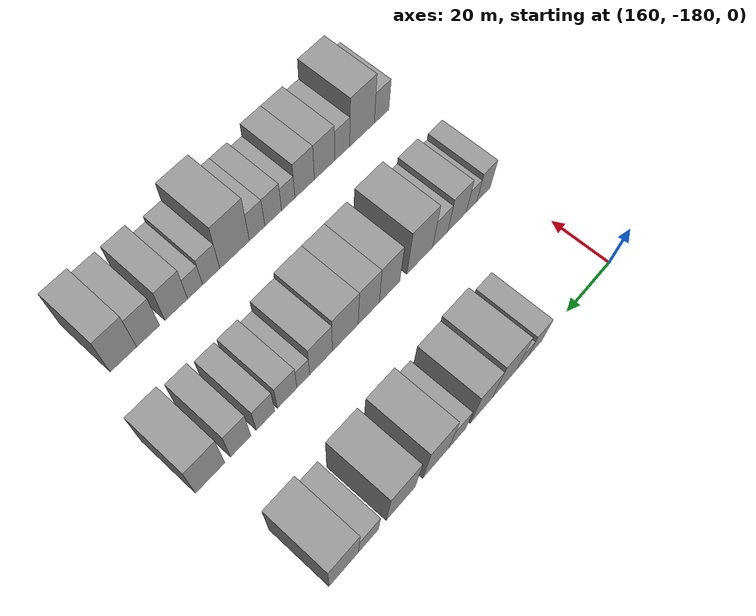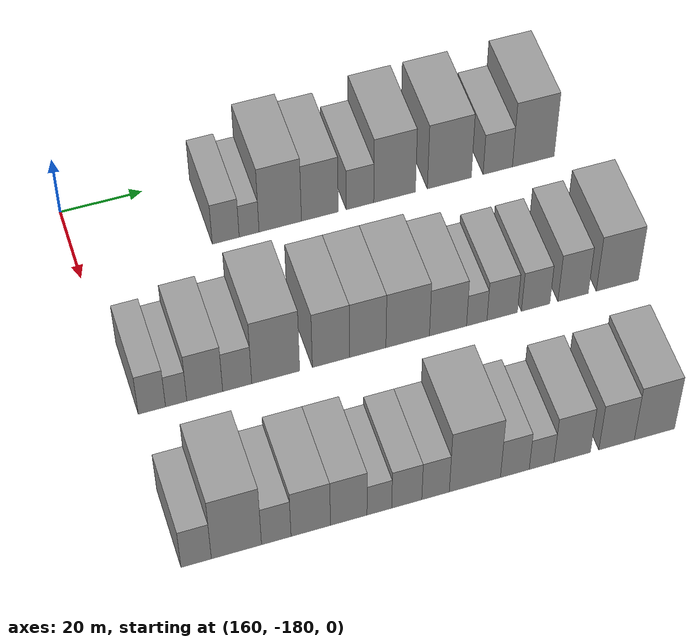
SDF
<sdf version="1.6">
 <world name="default">
  <model name="building_465">
   <static>1</static>
   <pose>170.0000 -145.0394 0 0.000000 0.000000 0.000000</pose>
   <link name="link">
    <pose>0 0 7.50 0 0 0</pose>
    <collision name="collision"><geometry><box><size>20.0000 6.5656 15.0000</size></box></geometry></collision>
    <visual name="visual">
     <cast_shadows>0</cast_shadows>
     <geometry><box><size>20.0000 6.5656 15.0000</size></box></geometry>
     <material>
      <script>
       <uri>model://grey_wall/materials/scripts</uri>
       <uri>model://grey_wall/materials/textures</uri>
       <name>vrc/grey_wall</name>
      </script>
     </material>
    </visual>
   </link>
  </model>
  <model name="building_466">
   <static>1</static>
   <pose>170.0000 -139.3261 0 0.000000 0.000000 0.000000</pose>
   <link name="link">
    <pose>0 0 6.00 0 0 0</pose>
    <collision name="collision"><geometry><box><size>20.0000 4.8610 12.0000</size></box></geometry></collision>
    <visual name="visual">
     <cast_shadows>0</cast_shadows>
     <geometry><box><size>20.0000 4.8610 12.0000</size></box></geometry>
     <material>
      <script>
       <uri>model://grey_wall/materials/scripts</uri>
       <uri>model://grey_wall/materials/textures</uri>
       <name>vrc/grey_wall</name>
      </script>
     </material>
    </visual>
   </link>
  </model>
  <model name="building_467">
   <static>1</static>
   <pose>170.0000 -131.6792 0 0.000000 0.000000 0.000000</pose>
   <link name="link">
    <pose>0 0 12.00 0 0 0</pose>
    <collision name="collision"><geometry><box><size>20.0000 10.4327 24.0000</size></box></geometry></collision>
    <visual name="visual">
     <cast_shadows>0</cast_shadows>
     <geometry><box><size>20.0000 10.4327 24.0000</size></box></geometry>
     <material>
      <script>
       <uri>model://grey_wall/materials/scripts</uri>
       <uri>model://grey_wall/materials/textures</uri>
       <name>vrc/grey_wall</name>
      </script>
     </material>
    </visual>
   </link>
  </model>
  <model name="building_468">
   <static>1</static>
   <pose>170.0000 -121.9236 0 0.000000 0.000000 0.000000</pose>
   <link name="link">
    <pose>0 0 10.50 0 0 0</pose>
    <collision name="collision"><geometry><box><size>20.0000 9.0785 21.0000</size></box></geometry></collision>
    <visual name="visual">
     <cast_shadows>0</cast_shadows>
     <geometry><box><size>20.0000 9.0785 21.0000</size></box></geometry>
     <material>
      <script>
       <uri>model://grey_wall/materials/scripts</uri>
       <uri>model://grey_wall/materials/textures</uri>
       <name>vrc/grey_wall</name>
      </script>
     </material>
    </visual>
   </link>
  </model>
  <model name="building_469">
   <static>1</static>
   <pose>170.0000 -111.9603 0 0.000000 0.000000 0.000000</pose>
   <link name="link">
    <pose>0 0 7.50 0 0 0</pose>
    <collision name="collision"><geometry><box><size>20.0000 6.8480 15.0000</size></box></geometry></collision>
    <visual name="visual">
     <cast_shadows>0</cast_shadows>
     <geometry><box><size>20.0000 6.8480 15.0000</size></box></geometry>
     <material>
      <script>
       <uri>model://grey_wall/materials/scripts</uri>
       <uri>model://grey_wall/materials/textures</uri>
       <name>vrc/grey_wall</name>
      </script>
     </material>
    </visual>
   </link>
  </model>
  <model name="building_470">
   <static>1</static>
   <pose>170.0000 -103.3231 0 0.000000 0.000000 0.000000</pose>
   <link name="link">
    <pose>0 0 12.00 0 0 0</pose>
    <collision name="collision"><geometry><box><size>20.0000 10.4263 24.0000</size></box></geometry></collision>
    <visual name="visual">
     <cast_shadows>0</cast_shadows>
     <geometry><box><size>20.0000 10.4263 24.0000</size></box></geometry>
     <material>
      <script>
       <uri>model://grey_wall/materials/scripts</uri>
       <uri>model://grey_wall/materials/textures</uri>
       <name>vrc/grey_wall</name>
      </script>
     </material>
    </visual>
   </link>
  </model>
  <model name="building_471">
   <static>1</static>
   <pose>170.0000 -89.5599 0 0.000000 0.000000 0.000000</pose>
   <link name="link">
    <pose>0 0 12.00 0 0 0</pose>
    <collision name="collision"><geometry><box><size>20.0000 11.1001 24.0000</size></box></geometry></collision>
    <visual name="visual">
     <cast_shadows>0</cast_shadows>
     <geometry><box><size>20.0000 11.1001 24.0000</size></box></geometry>
     <material>
      <script>
       <uri>model://grey_wall/materials/scripts</uri>
       <uri>model://grey_wall/materials/textures</uri>
       <name>vrc/grey_wall</name>
      </script>
     </material>
    </visual>
   </link>
  </model>
  <model name="building_472">
   <static>1</static>
   <pose>170.0000 -77.2872 0 0.000000 0.000000 0.000000</pose>
   <link name="link">
    <pose>0 0 7.50 0 0 0</pose>
    <collision name="collision"><geometry><box><size>20.0000 7.4454 15.0000</size></box></geometry></collision>
    <visual name="visual">
     <cast_shadows>0</cast_shadows>
     <geometry><box><size>20.0000 7.4454 15.0000</size></box></geometry>
     <material>
      <script>
       <uri>model://grey_wall/materials/scripts</uri>
       <uri>model://grey_wall/materials/textures</uri>
       <name>vrc/grey_wall</name>
      </script>
     </material>
    </visual>
   </link>
  </model>
  <model name="building_473">
   <static>1</static>
   <pose>170.0000 -68.2282 0 0.000000 0.000000 0.000000</pose>
   <link name="link">
    <pose>0 0 12.00 0 0 0</pose>
    <collision name="collision"><geometry><box><size>20.0000 10.6726 24.0000</size></box></geometry></collision>
    <visual name="visual">
     <cast_shadows>0</cast_shadows>
     <geometry><box><size>20.0000 10.6726 24.0000</size></box></geometry>
     <material>
      <script>
       <uri>model://grey_wall/materials/scripts</uri>
       <uri>model://grey_wall/materials/textures</uri>
       <name>vrc/grey_wall</name>
      </script>
     </material>
    </visual>
   </link>
  </model>
  <model name="building_593">
   <static>1</static>
   <pose>210.0000 -173.6153 0 0.000000 0.000000 0.000000</pose>
   <link name="link">
    <pose>0 0 7.50 0 0 0</pose>
    <collision name="collision"><geometry><box><size>20.0000 6.3141 15.0000</size></box></geometry></collision>
    <visual name="visual">
     <cast_shadows>0</cast_shadows>
     <geometry><box><size>20.0000 6.3141 15.0000</size></box></geometry>
     <material>
      <script>
       <uri>model://grey_wall/materials/scripts</uri>
       <uri>model://grey_wall/materials/textures</uri>
       <name>vrc/grey_wall</name>
      </script>
     </material>
    </visual>
   </link>
  </model>
  <model name="building_594">
   <static>1</static>
   <pose>210.0000 -167.9950 0 0.000000 0.000000 0.000000</pose>
   <link name="link">
    <pose>0 0 6.00 0 0 0</pose>
    <collision name="collision"><geometry><box><size>20.0000 4.9264 12.0000</size></box></geometry></collision>
    <visual name="visual">
     <cast_shadows>0</cast_shadows>
     <geometry><box><size>20.0000 4.9264 12.0000</size></box></geometry>
     <material>
      <script>
       <uri>model://grey_wall/materials/scripts</uri>
       <uri>model://grey_wall/materials/textures</uri>
       <name>vrc/grey_wall</name>
      </script>
     </material>
    </visual>
   </link>
  </model>
  <model name="building_595">
   <static>1</static>
   <pose>210.0000 -161.3542 0 0.000000 0.000000 0.000000</pose>
   <link name="link">
    <pose>0 0 9.00 0 0 0</pose>
    <collision name="collision"><geometry><box><size>20.0000 8.3553 18.0000</size></box></geometry></collision>
    <visual name="visual">
     <cast_shadows>0</cast_shadows>
     <geometry><box><size>20.0000 8.3553 18.0000</size></box></geometry>
     <material>
      <script>
       <uri>model://grey_wall/materials/scripts</uri>
       <uri>model://grey_wall/materials/textures</uri>
       <name>vrc/grey_wall</name>
      </script>
     </material>
    </visual>
   </link>
  </model>
  <model name="building_596">
   <static>1</static>
   <pose>210.0000 -153.7788 0 0.000000 0.000000 0.000000</pose>
   <link name="link">
    <pose>0 0 7.50 0 0 0</pose>
    <collision name="collision"><geometry><box><size>20.0000 6.7953 15.0000</size></box></geometry></collision>
    <visual name="visual">
     <cast_shadows>0</cast_shadows>
     <geometry><box><size>20.0000 6.7953 15.0000</size></box></geometry>
     <material>
      <script>
       <uri>model://grey_wall/materials/scripts</uri>
       <uri>model://grey_wall/materials/textures</uri>
       <name>vrc/grey_wall</name>
      </script>
     </material>
    </visual>
   </link>
  </model>
  <model name="building_597">
   <static>1</static>
   <pose>210.0000 -144.7455 0 0.000000 0.000000 0.000000</pose>
   <link name="link">
    <pose>0 0 12.00 0 0 0</pose>
    <collision name="collision"><geometry><box><size>20.0000 11.2714 24.0000</size></box></geometry></collision>
    <visual name="visual">
     <cast_shadows>0</cast_shadows>
     <geometry><box><size>20.0000 11.2714 24.0000</size></box></geometry>
     <material>
      <script>
       <uri>model://grey_wall/materials/scripts</uri>
       <uri>model://grey_wall/materials/textures</uri>
       <name>vrc/grey_wall</name>
      </script>
     </material>
    </visual>
   </link>
  </model>
  <model name="building_598">
   <static>1</static>
   <pose>210.0000 -131.6985 0 0.000000 0.000000 0.000000</pose>
   <link name="link">
    <pose>0 0 10.50 0 0 0</pose>
    <collision name="collision"><geometry><box><size>20.0000 8.8224 21.0000</size></box></geometry></collision>
    <visual name="visual">
     <cast_shadows>0</cast_shadows>
     <geometry><box><size>20.0000 8.8224 21.0000</size></box></geometry>
     <material>
      <script>
       <uri>model://grey_wall/materials/scripts</uri>
       <uri>model://grey_wall/materials/textures</uri>
       <name>vrc/grey_wall</name>
      </script>
     </material>
    </visual>
   </link>
  </model>
  <model name="building_599">
   <static>1</static>
   <pose>210.0000 -122.9503 0 0.000000 0.000000 0.000000</pose>
   <link name="link">
    <pose>0 0 10.50 0 0 0</pose>
    <collision name="collision"><geometry><box><size>20.0000 8.6740 21.0000</size></box></geometry></collision>
    <visual name="visual">
     <cast_shadows>0</cast_shadows>
     <geometry><box><size>20.0000 8.6740 21.0000</size></box></geometry>
     <material>
      <script>
       <uri>model://grey_wall/materials/scripts</uri>
       <uri>model://grey_wall/materials/textures</uri>
       <name>vrc/grey_wall</name>
      </script>
     </material>
    </visual>
   </link>
  </model>
  <model name="building_600">
   <static>1</static>
   <pose>210.0000 -113.3906 0 0.000000 0.000000 0.000000</pose>
   <link name="link">
    <pose>0 0 10.50 0 0 0</pose>
    <collision name="collision"><geometry><box><size>20.0000 10.4454 21.0000</size></box></geometry></collision>
    <visual name="visual">
     <cast_shadows>0</cast_shadows>
     <geometry><box><size>20.0000 10.4454 21.0000</size></box></geometry>
     <material>
      <script>
       <uri>model://grey_wall/materials/scripts</uri>
       <uri>model://grey_wall/materials/textures</uri>
       <name>vrc/grey_wall</name>
      </script>
     </material>
    </visual>
   </link>
  </model>
  <model name="building_601">
   <static>1</static>
   <pose>210.0000 -103.6855 0 0.000000 0.000000 0.000000</pose>
   <link name="link">
    <pose>0 0 9.00 0 0 0</pose>
    <collision name="collision"><geometry><box><size>20.0000 8.9649 18.0000</size></box></geometry></collision>
    <visual name="visual">
     <cast_shadows>0</cast_shadows>
     <geometry><box><size>20.0000 8.9649 18.0000</size></box></geometry>
     <material>
      <script>
       <uri>model://grey_wall/materials/scripts</uri>
       <uri>model://grey_wall/materials/textures</uri>
       <name>vrc/grey_wall</name>
      </script>
     </material>
    </visual>
   </link>
  </model>
  <model name="building_602">
   <static>1</static>
   <pose>210.0000 -96.7235 0 0.000000 0.000000 0.000000</pose>
   <link name="link">
    <pose>0 0 6.00 0 0 0</pose>
    <collision name="collision"><geometry><box><size>20.0000 4.9590 12.0000</size></box></geometry></collision>
    <visual name="visual">
     <cast_shadows>0</cast_shadows>
     <geometry><box><size>20.0000 4.9590 12.0000</size></box></geometry>
     <material>
      <script>
       <uri>model://grey_wall/materials/scripts</uri>
       <uri>model://grey_wall/materials/textures</uri>
       <name>vrc/grey_wall</name>
      </script>
     </material>
    </visual>
   </link>
  </model>
  <model name="building_603">
   <static>1</static>
   <pose>210.0000 -90.5403 0 0.000000 0.000000 0.000000</pose>
   <link name="link">
    <pose>0 0 7.50 0 0 0</pose>
    <collision name="collision"><geometry><box><size>20.0000 7.4075 15.0000</size></box></geometry></collision>
    <visual name="visual">
     <cast_shadows>0</cast_shadows>
     <geometry><box><size>20.0000 7.4075 15.0000</size></box></geometry>
     <material>
      <script>
       <uri>model://grey_wall/materials/scripts</uri>
       <uri>model://grey_wall/materials/textures</uri>
       <name>vrc/grey_wall</name>
      </script>
     </material>
    </visual>
   </link>
  </model>
  <model name="building_604">
   <static>1</static>
   <pose>210.0000 -82.3631 0 0.000000 0.000000 0.000000</pose>
   <link name="link">
    <pose>0 0 7.50 0 0 0</pose>
    <collision name="collision"><geometry><box><size>20.0000 6.9468 15.0000</size></box></geometry></collision>
    <visual name="visual">
     <cast_shadows>0</cast_shadows>
     <geometry><box><size>20.0000 6.9468 15.0000</size></box></geometry>
     <material>
      <script>
       <uri>model://grey_wall/materials/scripts</uri>
       <uri>model://grey_wall/materials/textures</uri>
       <name>vrc/grey_wall</name>
      </script>
     </material>
    </visual>
   </link>
  </model>
  <model name="building_605">
   <static>1</static>
   <pose>210.0000 -73.1635 0 0.000000 0.000000 0.000000</pose>
   <link name="link">
    <pose>0 0 9.00 0 0 0</pose>
    <collision name="collision"><geometry><box><size>20.0000 7.4525 18.0000</size></box></geometry></collision>
    <visual name="visual">
     <cast_shadows>0</cast_shadows>
     <geometry><box><size>20.0000 7.4525 18.0000</size></box></geometry>
     <material>
      <script>
       <uri>model://grey_wall/materials/scripts</uri>
       <uri>model://grey_wall/materials/textures</uri>
       <name>vrc/grey_wall</name>
      </script>
     </material>
    </visual>
   </link>
  </model>
  <model name="building_606">
   <static>1</static>
   <pose>210.0000 -62.2141 0 0.000000 0.000000 0.000000</pose>
   <link name="link">
    <pose>0 0 10.50 0 0 0</pose>
    <collision name="collision"><geometry><box><size>20.0000 10.4463 21.0000</size></box></geometry></collision>
    <visual name="visual">
     <cast_shadows>0</cast_shadows>
     <geometry><box><size>20.0000 10.4463 21.0000</size></box></geometry>
     <material>
      <script>
       <uri>model://grey_wall/materials/scripts</uri>
       <uri>model://grey_wall/materials/textures</uri>
       <name>vrc/grey_wall</name>
      </script>
     </material>
    </visual>
   </link>
  </model>
  <model name="building_732">
   <static>1</static>
   <pose>250.0000 -174.4849 0 0.000000 0.000000 0.000000</pose>
   <link name="link">
    <pose>0 0 7.50 0 0 0</pose>
    <collision name="collision"><geometry><box><size>20.0000 6.7580 15.0000</size></box></geometry></collision>
    <visual name="visual">
     <cast_shadows>0</cast_shadows>
     <geometry><box><size>20.0000 6.7580 15.0000</size></box></geometry>
     <material>
      <script>
       <uri>model://grey_wall/materials/scripts</uri>
       <uri>model://grey_wall/materials/textures</uri>
       <name>vrc/grey_wall</name>
      </script>
     </material>
    </visual>
   </link>
  </model>
  <model name="building_733">
   <static>1</static>
   <pose>250.0000 -165.5013 0 0.000000 0.000000 0.000000</pose>
   <link name="link">
    <pose>0 0 12.00 0 0 0</pose>
    <collision name="collision"><geometry><box><size>20.0000 11.2093 24.0000</size></box></geometry></collision>
    <visual name="visual">
     <cast_shadows>0</cast_shadows>
     <geometry><box><size>20.0000 11.2093 24.0000</size></box></geometry>
     <material>
      <script>
       <uri>model://grey_wall/materials/scripts</uri>
       <uri>model://grey_wall/materials/textures</uri>
       <name>vrc/grey_wall</name>
      </script>
     </material>
    </visual>
   </link>
  </model>
  <model name="building_734">
   <static>1</static>
   <pose>250.0000 -156.5807 0 0.000000 0.000000 0.000000</pose>
   <link name="link">
    <pose>0 0 7.50 0 0 0</pose>
    <collision name="collision"><geometry><box><size>20.0000 6.6319 15.0000</size></box></geometry></collision>
    <visual name="visual">
     <cast_shadows>0</cast_shadows>
     <geometry><box><size>20.0000 6.6319 15.0000</size></box></geometry>
     <material>
      <script>
       <uri>model://grey_wall/materials/scripts</uri>
       <uri>model://grey_wall/materials/textures</uri>
       <name>vrc/grey_wall</name>
      </script>
     </material>
    </visual>
   </link>
  </model>
  <model name="building_735">
   <static>1</static>
   <pose>250.0000 -148.8086 0 0.000000 0.000000 0.000000</pose>
   <link name="link">
    <pose>0 0 9.00 0 0 0</pose>
    <collision name="collision"><geometry><box><size>20.0000 8.9122 18.0000</size></box></geometry></collision>
    <visual name="visual">
     <cast_shadows>0</cast_shadows>
     <geometry><box><size>20.0000 8.9122 18.0000</size></box></geometry>
     <material>
      <script>
       <uri>model://grey_wall/materials/scripts</uri>
       <uri>model://grey_wall/materials/textures</uri>
       <name>vrc/grey_wall</name>
      </script>
     </material>
    </visual>
   </link>
  </model>
  <model name="building_736">
   <static>1</static>
   <pose>250.0000 -140.2031 0 0.000000 0.000000 0.000000</pose>
   <link name="link">
    <pose>0 0 9.00 0 0 0</pose>
    <collision name="collision"><geometry><box><size>20.0000 8.2988 18.0000</size></box></geometry></collision>
    <visual name="visual">
     <cast_shadows>0</cast_shadows>
     <geometry><box><size>20.0000 8.2988 18.0000</size></box></geometry>
     <material>
      <script>
       <uri>model://grey_wall/materials/scripts</uri>
       <uri>model://grey_wall/materials/textures</uri>
       <name>vrc/grey_wall</name>
      </script>
     </material>
    </visual>
   </link>
  </model>
  <model name="building_737">
   <static>1</static>
   <pose>250.0000 -133.2348 0 0.000000 0.000000 0.000000</pose>
   <link name="link">
    <pose>0 0 6.00 0 0 0</pose>
    <collision name="collision"><geometry><box><size>20.0000 5.6377 12.0000</size></box></geometry></collision>
    <visual name="visual">
     <cast_shadows>0</cast_shadows>
     <geometry><box><size>20.0000 5.6377 12.0000</size></box></geometry>
     <material>
      <script>
       <uri>model://grey_wall/materials/scripts</uri>
       <uri>model://grey_wall/materials/textures</uri>
       <name>vrc/grey_wall</name>
      </script>
     </material>
    </visual>
   </link>
  </model>
  <model name="building_738">
   <static>1</static>
   <pose>250.0000 -126.9623 0 0.000000 0.000000 0.000000</pose>
   <link name="link">
    <pose>0 0 7.50 0 0 0</pose>
    <collision name="collision"><geometry><box><size>20.0000 6.9073 15.0000</size></box></geometry></collision>
    <visual name="visual">
     <cast_shadows>0</cast_shadows>
     <geometry><box><size>20.0000 6.9073 15.0000</size></box></geometry>
     <material>
      <script>
       <uri>model://grey_wall/materials/scripts</uri>
       <uri>model://grey_wall/materials/textures</uri>
       <name>vrc/grey_wall</name>
      </script>
     </material>
    </visual>
   </link>
  </model>
  <model name="building_739">
   <static>1</static>
   <pose>250.0000 -120.3437 0 0.000000 0.000000 0.000000</pose>
   <link name="link">
    <pose>0 0 7.50 0 0 0</pose>
    <collision name="collision"><geometry><box><size>20.0000 6.3300 15.0000</size></box></geometry></collision>
    <visual name="visual">
     <cast_shadows>0</cast_shadows>
     <geometry><box><size>20.0000 6.3300 15.0000</size></box></geometry>
     <material>
      <script>
       <uri>model://grey_wall/materials/scripts</uri>
       <uri>model://grey_wall/materials/textures</uri>
       <name>vrc/grey_wall</name>
      </script>
     </material>
    </visual>
   </link>
  </model>
  <model name="building_740">
   <static>1</static>
   <pose>250.0000 -111.2496 0 0.000000 0.000000 0.000000</pose>
   <link name="link">
    <pose>0 0 12.00 0 0 0</pose>
    <collision name="collision"><geometry><box><size>20.0000 11.8581 24.0000</size></box></geometry></collision>
    <visual name="visual">
     <cast_shadows>0</cast_shadows>
     <geometry><box><size>20.0000 11.8581 24.0000</size></box></geometry>
     <material>
      <script>
       <uri>model://grey_wall/materials/scripts</uri>
       <uri>model://grey_wall/materials/textures</uri>
       <name>vrc/grey_wall</name>
      </script>
     </material>
    </visual>
   </link>
  </model>
  <model name="building_741">
   <static>1</static>
   <pose>250.0000 -101.9656 0 0.000000 0.000000 0.000000</pose>
   <link name="link">
    <pose>0 0 7.50 0 0 0</pose>
    <collision name="collision"><geometry><box><size>20.0000 6.7100 15.0000</size></box></geometry></collision>
    <visual name="visual">
     <cast_shadows>0</cast_shadows>
     <geometry><box><size>20.0000 6.7100 15.0000</size></box></geometry>
     <material>
      <script>
       <uri>model://grey_wall/materials/scripts</uri>
       <uri>model://grey_wall/materials/textures</uri>
       <name>vrc/grey_wall</name>
      </script>
     </material>
    </visual>
   </link>
  </model>
  <model name="building_742">
   <static>1</static>
   <pose>250.0000 -95.7255 0 0.000000 0.000000 0.000000</pose>
   <link name="link">
    <pose>0 0 6.00 0 0 0</pose>
    <collision name="collision"><geometry><box><size>20.0000 5.7701 12.0000</size></box></geometry></collision>
    <visual name="visual">
     <cast_shadows>0</cast_shadows>
     <geometry><box><size>20.0000 5.7701 12.0000</size></box></geometry>
     <material>
      <script>
       <uri>model://grey_wall/materials/scripts</uri>
       <uri>model://grey_wall/materials/textures</uri>
       <name>vrc/grey_wall</name>
      </script>
     </material>
    </visual>
   </link>
  </model>
  <model name="building_743">
   <static>1</static>
   <pose>250.0000 -88.5403 0 0.000000 0.000000 0.000000</pose>
   <link name="link">
    <pose>0 0 9.00 0 0 0</pose>
    <collision name="collision"><geometry><box><size>20.0000 8.6003 18.0000</size></box></geometry></collision>
    <visual name="visual">
     <cast_shadows>0</cast_shadows>
     <geometry><box><size>20.0000 8.6003 18.0000</size></box></geometry>
     <material>
      <script>
       <uri>model://grey_wall/materials/scripts</uri>
       <uri>model://grey_wall/materials/textures</uri>
       <name>vrc/grey_wall</name>
      </script>
     </material>
    </visual>
   </link>
  </model>
  <model name="building_744">
   <static>1</static>
   <pose>250.0000 -78.0308 0 0.000000 0.000000 0.000000</pose>
   <link name="link">
    <pose>0 0 9.00 0 0 0</pose>
    <collision name="collision"><geometry><box><size>20.0000 8.4187 18.0000</size></box></geometry></collision>
    <visual name="visual">
     <cast_shadows>0</cast_shadows>
     <geometry><box><size>20.0000 8.4187 18.0000</size></box></geometry>
     <material>
      <script>
       <uri>model://grey_wall/materials/scripts</uri>
       <uri>model://grey_wall/materials/textures</uri>
       <name>vrc/grey_wall</name>
      </script>
     </material>
    </visual>
   </link>
  </model>
  <model name="building_745">
   <static>1</static>
   <pose>250.0000 -69.0367 0 0.000000 0.000000 0.000000</pose>
   <link name="link">
    <pose>0 0 10.50 0 0 0</pose>
    <collision name="collision"><geometry><box><size>20.0000 9.5696 21.0000</size></box></geometry></collision>
    <visual name="visual">
     <cast_shadows>0</cast_shadows>
     <geometry><box><size>20.0000 9.5696 21.0000</size></box></geometry>
     <material>
      <script>
       <uri>model://grey_wall/materials/scripts</uri>
       <uri>model://grey_wall/materials/textures</uri>
       <name>vrc/grey_wall</name>
      </script>
     </material>
    </visual>
   </link>
  </model>
 </world>
</sdf>
